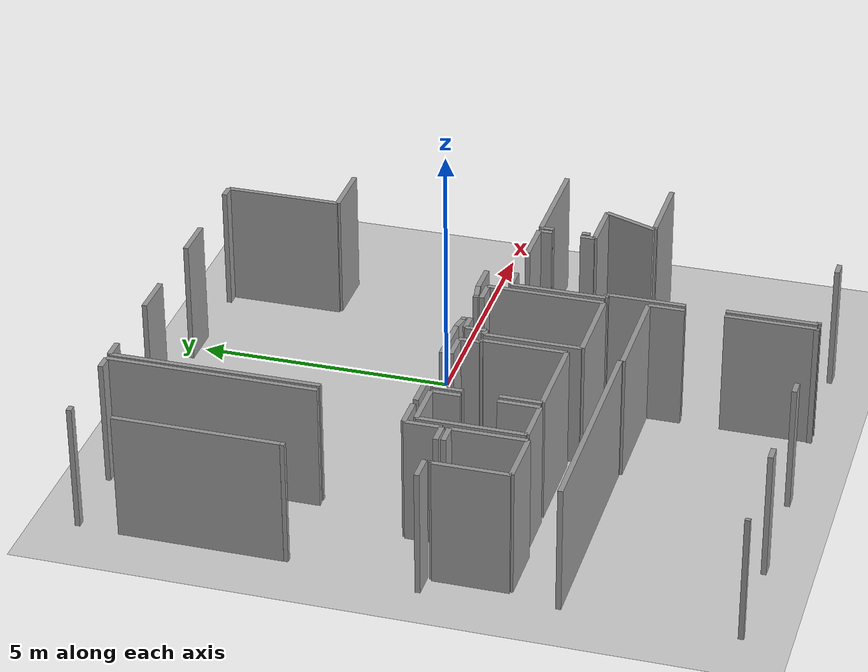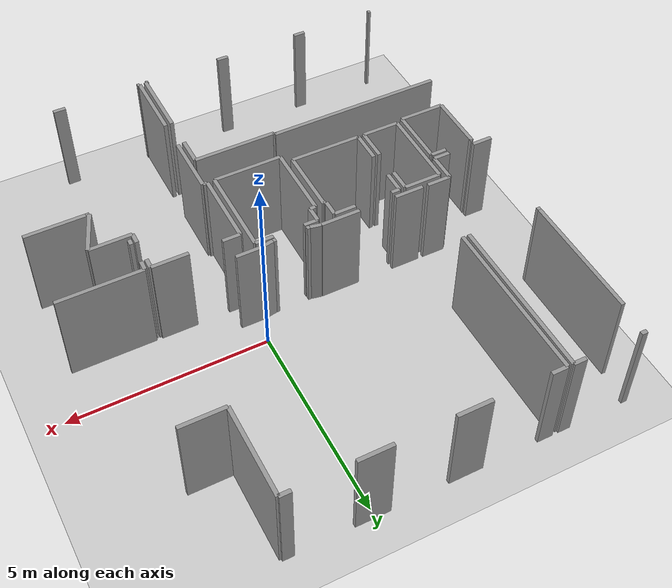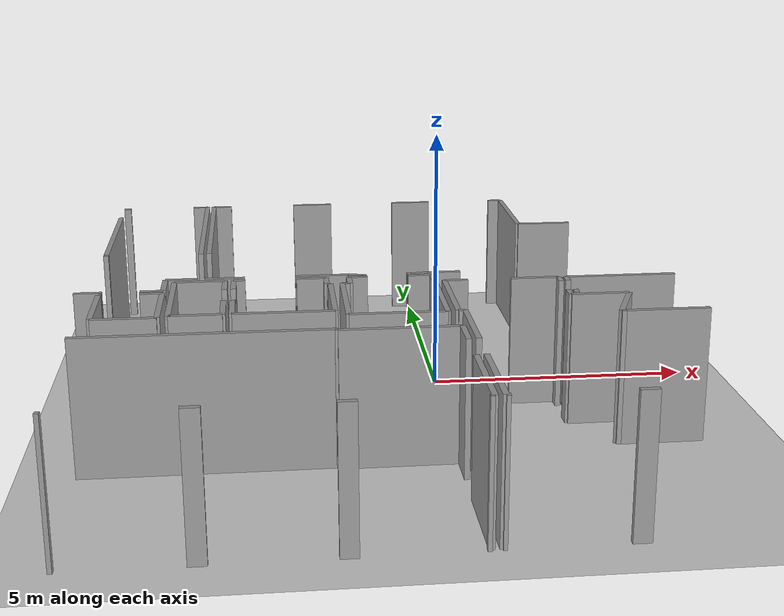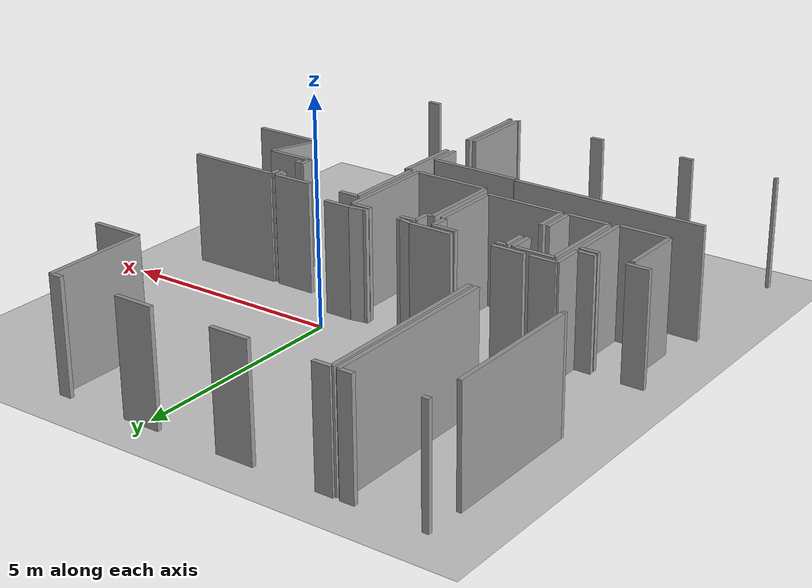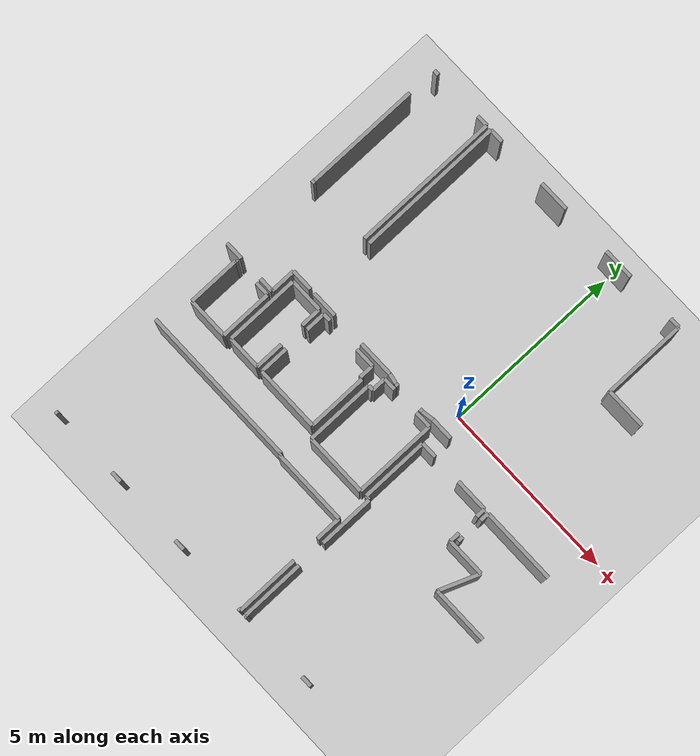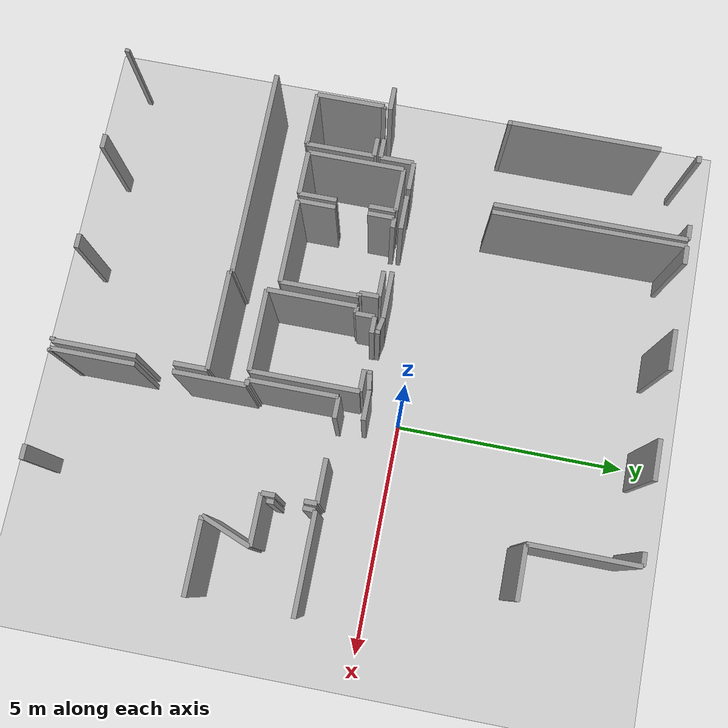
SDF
<sdf version="1.6">
 <world name="default">
  <model name="ground_plane">
   <static>1</static>
   <link name="link">
    <collision name="collision">
     <geometry><plane><normal>0 0 1</normal><size>100 100</size></plane></geometry>
     <surface><friction><ode><mu>100</mu><mu2>50</mu2></ode></friction></surface>
    </collision>
    <visual name="visual">
     <cast_shadows>0</cast_shadows>
     <geometry><plane><normal>0 0 1</normal><size>100 100</size></plane></geometry>
     <material>
      <script><uri>file://media/materials/scripts/gazebo.material</uri><name>Gazebo/Grey</name></script>
     </material>
    </visual>
   </link>
  </model>
  <model name="0510025536_Layout1_PLAN4">
   <static>1</static>
   <link name="Wall_43">
    <collision name="Wall_43_Collision">
     <geometry><box><size>1.43822038098 0.1 2.5</size></box></geometry>
     <pose>0.719110190492 0 1.25 0 0 0</pose>
    </collision>
    <visual name="Wall_43_Visual">
     <pose>0.719110190492 0 1.25 0 0 0</pose>
     <geometry><box><size>1.43822038098 0.1 2.5</size></box></geometry>
     <material>
      <script><uri>file://media/materials/scripts/gazebo.material</uri><name>Gazebo/Grey</name></script>
      <ambient>1 1 1 1</ambient>
     </material>
    </visual>
    <pose>13.8250244628 -8.15341652794 0 0 0 1.57079632679</pose>
   </link>
   <link name="Wall_44">
    <collision name="Wall_44_Collision">
     <geometry><box><size>0.0514671309298 0.1 2.5</size></box></geometry>
     <pose>0.0257335654649 0 1.25 0 0 0</pose>
    </collision>
    <visual name="Wall_44_Visual">
     <pose>0.0257335654649 0 1.25 0 0 0</pose>
     <geometry><box><size>0.0514671309298 0.1 2.5</size></box></geometry>
     <material>
      <script><uri>file://media/materials/scripts/gazebo.material</uri><name>Gazebo/Grey</name></script>
      <ambient>1 1 1 1</ambient>
     </material>
    </visual>
    <pose>13.8250244628 -6.71519614695 0 0 0 0.0</pose>
   </link>
   <link name="Wall_45">
    <collision name="Wall_45_Collision">
     <geometry><box><size>0.402650874941 0.1 2.5</size></box></geometry>
     <pose>0.201325437471 0 1.25 0 0 0</pose>
    </collision>
    <visual name="Wall_45_Visual">
     <pose>0.201325437471 0 1.25 0 0 0</pose>
     <geometry><box><size>0.402650874941 0.1 2.5</size></box></geometry>
     <material>
      <script><uri>file://media/materials/scripts/gazebo.material</uri><name>Gazebo/Grey</name></script>
      <ambient>1 1 1 1</ambient>
     </material>
    </visual>
    <pose>14.557573293 -6.71519614695 0 0 0 0.0</pose>
   </link>
   <link name="Wall_46">
    <collision name="Wall_46_Collision">
     <geometry><box><size>1.44266815773 0.1 2.5</size></box></geometry>
     <pose>0.721334078865 0 1.25 0 0 0</pose>
    </collision>
    <visual name="Wall_46_Visual">
     <pose>0.721334078865 0 1.25 0 0 0</pose>
     <geometry><box><size>1.44266815773 0.1 2.5</size></box></geometry>
     <material>
      <script><uri>file://media/materials/scripts/gazebo.material</uri><name>Gazebo/Grey</name></script>
      <ambient>1 1 1 1</ambient>
     </material>
    </visual>
    <pose>14.9602241679 -6.71519614695 0 0 0 -1.57079632679</pose>
   </link>
   <link name="Wall_47">
    <collision name="Wall_47_Collision">
     <geometry><box><size>1.13520841846 0.1 2.5</size></box></geometry>
     <pose>0.567604209232 0 1.25 0 0 0</pose>
    </collision>
    <visual name="Wall_47_Visual">
     <pose>0.567604209232 0 1.25 0 0 0</pose>
     <geometry><box><size>1.13520841846 0.1 2.5</size></box></geometry>
     <material>
      <script><uri>file://media/materials/scripts/gazebo.material</uri><name>Gazebo/Grey</name></script>
      <ambient>1 1 1 1</ambient>
     </material>
    </visual>
    <pose>14.9602241679 -8.15786430469 0 0 0 3.13767461699</pose>
   </link>
   <link name="Wall_48">
    <collision name="Wall_48_Collision">
     <geometry><box><size>3.17212260614 0.1 2.5</size></box></geometry>
     <pose>1.58606130307 0 1.25 0 0 0</pose>
    </collision>
    <visual name="Wall_48_Visual">
     <pose>1.58606130307 0 1.25 0 0 0</pose>
     <geometry><box><size>3.17212260614 0.1 2.5</size></box></geometry>
     <material>
      <script><uri>file://media/materials/scripts/gazebo.material</uri><name>Gazebo/Grey</name></script>
      <ambient>1 1 1 1</ambient>
     </material>
    </visual>
    <pose>13.6853007332 -3.98781944568 0 0 0 1.57079632679</pose>
   </link>
   <link name="Wall_49">
    <collision name="Wall_49_Collision">
     <geometry><box><size>0.146967251655 0.1 2.5</size></box></geometry>
     <pose>0.0734836258276 0 1.25 0 0 0</pose>
    </collision>
    <visual name="Wall_49_Visual">
     <pose>0.0734836258276 0 1.25 0 0 0</pose>
     <geometry><box><size>0.146967251655 0.1 2.5</size></box></geometry>
     <material>
      <script><uri>file://media/materials/scripts/gazebo.material</uri><name>Gazebo/Grey</name></script>
      <ambient>1 1 1 1</ambient>
     </material>
    </visual>
    <pose>13.6853007332 -0.00146776632652 0 0 0 0.0</pose>
   </link>
   <link name="Wall_50">
    <collision name="Wall_50_Collision">
     <geometry><box><size>0.31604630771 0.1 2.5</size></box></geometry>
     <pose>0.158023153855 0 1.25 0 0 0</pose>
    </collision>
    <visual name="Wall_50_Visual">
     <pose>0.158023153855 0 1.25 0 0 0</pose>
     <geometry><box><size>0.31604630771 0.1 2.5</size></box></geometry>
     <material>
      <script><uri>file://media/materials/scripts/gazebo.material</uri><name>Gazebo/Grey</name></script>
      <ambient>1 1 1 1</ambient>
     </material>
    </visual>
    <pose>15.2350332312 -0.00146776632652 0 0 0 0.0</pose>
   </link>
   <link name="Wall_51">
    <collision name="Wall_51_Collision">
     <geometry><box><size>4.06965218386 0.1 2.5</size></box></geometry>
     <pose>2.03482609193 0 1.25 0 0 0</pose>
    </collision>
    <visual name="Wall_51_Visual">
     <pose>2.03482609193 0 1.25 0 0 0</pose>
     <geometry><box><size>4.06965218386 0.1 2.5</size></box></geometry>
     <material>
      <script><uri>file://media/materials/scripts/gazebo.material</uri><name>Gazebo/Grey</name></script>
      <ambient>1 1 1 1</ambient>
     </material>
    </visual>
    <pose>15.551079539 -0.00146776632652 0 0 0 -1.57079632679</pose>
   </link>
   <link name="Wall_52">
    <collision name="Wall_52_Collision">
     <geometry><box><size>0.0833067079944 0.1 2.5</size></box></geometry>
     <pose>0.0416533539972 0 1.25 0 0 0</pose>
    </collision>
    <visual name="Wall_52_Visual">
     <pose>0.0416533539972 0 1.25 0 0 0</pose>
     <geometry><box><size>0.0833067079944 0.1 2.5</size></box></geometry>
     <material>
      <script><uri>file://media/materials/scripts/gazebo.material</uri><name>Gazebo/Grey</name></script>
      <ambient>1 1 1 1</ambient>
     </material>
    </visual>
    <pose>13.6863173679 -4.07111995018 0 0 0 1.58300014501</pose>
   </link>
   <link name="Wall_66">
    <collision name="Wall_66_Collision">
     <geometry><box><size>0.597844734468 0.1 2.5</size></box></geometry>
     <pose>0.298922367234 0 1.25 0 0 0</pose>
    </collision>
    <visual name="Wall_66_Visual">
     <pose>0.298922367234 0 1.25 0 0 0</pose>
     <geometry><box><size>0.597844734468 0.1 2.5</size></box></geometry>
     <material>
      <script><uri>file://media/materials/scripts/gazebo.material</uri><name>Gazebo/Grey</name></script>
      <ambient>1 1 1 1</ambient>
     </material>
    </visual>
    <pose>15.5637239329 -5.86713220063 0 0 0 3.14159265359</pose>
   </link>
   <link name="Wall_67">
    <collision name="Wall_67_Collision">
     <geometry><box><size>0.708340216797 0.1 2.5</size></box></geometry>
     <pose>0.354170108399 0 1.25 0 0 0</pose>
    </collision>
    <visual name="Wall_67_Visual">
     <pose>0.354170108399 0 1.25 0 0 0</pose>
     <geometry><box><size>0.708340216797 0.1 2.5</size></box></geometry>
     <material>
      <script><uri>file://media/materials/scripts/gazebo.material</uri><name>Gazebo/Grey</name></script>
      <ambient>1 1 1 1</ambient>
     </material>
    </visual>
    <pose>14.9658791984 -5.86713220063 0 0 0 -1.57079632679</pose>
   </link>
   <link name="Wall_68">
    <collision name="Wall_68_Collision">
     <geometry><box><size>0.415740046511 0.1 2.5</size></box></geometry>
     <pose>0.207870023256 0 1.25 0 0 0</pose>
    </collision>
    <visual name="Wall_68_Visual">
     <pose>0.207870023256 0 1.25 0 0 0</pose>
     <geometry><box><size>0.415740046511 0.1 2.5</size></box></geometry>
     <material>
      <script><uri>file://media/materials/scripts/gazebo.material</uri><name>Gazebo/Grey</name></script>
      <ambient>1 1 1 1</ambient>
     </material>
    </visual>
    <pose>14.9658791984 -6.57547241743 0 0 0 3.14159265359</pose>
   </link>
   <link name="Wall_69">
    <collision name="Wall_69_Collision">
     <geometry><box><size>0.504377883112 0.1 2.5</size></box></geometry>
     <pose>0.252188941556 0 1.25 0 0 0</pose>
    </collision>
    <visual name="Wall_69_Visual">
     <pose>0.252188941556 0 1.25 0 0 0</pose>
     <geometry><box><size>0.504377883112 0.1 2.5</size></box></geometry>
     <material>
      <script><uri>file://media/materials/scripts/gazebo.material</uri><name>Gazebo/Grey</name></script>
      <ambient>1 1 1 1</ambient>
     </material>
    </visual>
    <pose>13.8700740873 -6.57547241743 0 0 0 3.14159265359</pose>
   </link>
   <link name="Wall_85">
    <collision name="Wall_85_Collision">
     <geometry><box><size>2.04013165419 0.1 2.5</size></box></geometry>
     <pose>1.0200658271 0 1.25 0 0 0</pose>
    </collision>
    <visual name="Wall_85_Visual">
     <pose>1.0200658271 0 1.25 0 0 0</pose>
     <geometry><box><size>2.04013165419 0.1 2.5</size></box></geometry>
     <material>
      <script><uri>file://media/materials/scripts/gazebo.material</uri><name>Gazebo/Grey</name></script>
      <ambient>1 1 1 1</ambient>
     </material>
    </visual>
    <pose>15.1395331105 -8.0865727974 0 0 0 1.57079632679</pose>
   </link>
   <link name="Wall_86">
    <collision name="Wall_86_Collision">
     <geometry><box><size>0.932825863186 0.1 2.5</size></box></geometry>
     <pose>0.466412931593 0 1.25 0 0 0</pose>
    </collision>
    <visual name="Wall_86_Visual">
     <pose>0.466412931593 0 1.25 0 0 0</pose>
     <geometry><box><size>0.932825863186 0.1 2.5</size></box></geometry>
     <material>
      <script><uri>file://media/materials/scripts/gazebo.material</uri><name>Gazebo/Grey</name></script>
      <ambient>1 1 1 1</ambient>
     </material>
    </visual>
    <pose>15.1395331105 -6.04644114321 0 0 0 0.0</pose>
   </link>
   <link name="Wall_87">
    <collision name="Wall_87_Collision">
     <geometry><box><size>0.562262520492 0.1 2.5</size></box></geometry>
     <pose>0.281131260246 0 1.25 0 0 0</pose>
    </collision>
    <visual name="Wall_87_Visual">
     <pose>0.281131260246 0 1.25 0 0 0</pose>
     <geometry><box><size>0.562262520492 0.1 2.5</size></box></geometry>
     <material>
      <script><uri>file://media/materials/scripts/gazebo.material</uri><name>Gazebo/Grey</name></script>
      <ambient>1 1 1 1</ambient>
     </material>
    </visual>
    <pose>16.0723589737 -6.04644114321 0 0 0 -1.57079632679</pose>
   </link>
   <link name="Wall_88">
    <collision name="Wall_88_Collision">
     <geometry><box><size>0.795707260042 0.1 2.5</size></box></geometry>
     <pose>0.397853630021 0 1.25 0 0 0</pose>
    </collision>
    <visual name="Wall_88_Visual">
     <pose>0.397853630021 0 1.25 0 0 0</pose>
     <geometry><box><size>0.795707260042 0.1 2.5</size></box></geometry>
     <material>
      <script><uri>file://media/materials/scripts/gazebo.material</uri><name>Gazebo/Grey</name></script>
      <ambient>1 1 1 1</ambient>
     </material>
    </visual>
    <pose>16.0723589737 -7.29328004473 0 0 0 -1.57079632679</pose>
   </link>
   <link name="Wall_89">
    <collision name="Wall_89_Collision">
     <geometry><box><size>0.932828988012 0.1 2.5</size></box></geometry>
     <pose>0.466414494006 0 1.25 0 0 0</pose>
    </collision>
    <visual name="Wall_89_Visual">
     <pose>0.466414494006 0 1.25 0 0 0</pose>
     <geometry><box><size>0.932828988012 0.1 2.5</size></box></geometry>
     <material>
      <script><uri>file://media/materials/scripts/gazebo.material</uri><name>Gazebo/Grey</name></script>
      <ambient>1 1 1 1</ambient>
     </material>
    </visual>
    <pose>16.0723589737 -8.08898730477 0 0 0 3.13900427983</pose>
   </link>
   <link name="Wall_90">
    <collision name="Wall_90_Collision">
     <geometry><box><size>0.795961418714 0.1 2.5</size></box></geometry>
     <pose>0.397980709357 0 1.25 0 0 0</pose>
    </collision>
    <visual name="Wall_90_Visual">
     <pose>0.397980709357 0 1.25 0 0 0</pose>
     <geometry><box><size>0.795961418714 0.1 2.5</size></box></geometry>
     <material>
      <script><uri>file://media/materials/scripts/gazebo.material</uri><name>Gazebo/Grey</name></script>
      <ambient>1 1 1 1</ambient>
     </material>
    </visual>
    <pose>16.2306998259 -8.08326873467 0 0 0 1.57079632679</pose>
   </link>
   <link name="Wall_91">
    <collision name="Wall_91_Collision">
     <geometry><box><size>0.557687664409 0.1 2.5</size></box></geometry>
     <pose>0.278843832204 0 1.25 0 0 0</pose>
    </collision>
    <visual name="Wall_91_Visual">
     <pose>0.278843832204 0 1.25 0 0 0</pose>
     <geometry><box><size>0.557687664409 0.1 2.5</size></box></geometry>
     <material>
      <script><uri>file://media/materials/scripts/gazebo.material</uri><name>Gazebo/Grey</name></script>
      <ambient>1 1 1 1</ambient>
     </material>
    </visual>
    <pose>16.2306998259 -6.60203199858 0 0 0 1.57079632679</pose>
   </link>
   <link name="Wall_92">
    <collision name="Wall_92_Collision">
     <geometry><box><size>0.215780711898 0.1 2.5</size></box></geometry>
     <pose>0.107890355949 0 1.25 0 0 0</pose>
    </collision>
    <visual name="Wall_92_Visual">
     <pose>0.107890355949 0 1.25 0 0 0</pose>
     <geometry><box><size>0.215780711898 0.1 2.5</size></box></geometry>
     <material>
      <script><uri>file://media/materials/scripts/gazebo.material</uri><name>Gazebo/Grey</name></script>
      <ambient>1 1 1 1</ambient>
     </material>
    </visual>
    <pose>16.2306998259 -6.04434433417 0 0 0 0.0</pose>
   </link>
   <link name="Wall_93">
    <collision name="Wall_93_Collision">
     <geometry><box><size>0.550444142278 0.1 2.5</size></box></geometry>
     <pose>0.275222071139 0 1.25 0 0 0</pose>
    </collision>
    <visual name="Wall_93_Visual">
     <pose>0.275222071139 0 1.25 0 0 0</pose>
     <geometry><box><size>0.550444142278 0.1 2.5</size></box></geometry>
     <material>
      <script><uri>file://media/materials/scripts/gazebo.material</uri><name>Gazebo/Grey</name></script>
      <ambient>1 1 1 1</ambient>
     </material>
    </visual>
    <pose>17.400719269 -6.04434433417 0 0 0 0.0</pose>
   </link>
   <link name="Wall_94">
    <collision name="Wall_94_Collision">
     <geometry><box><size>0.403921668298 0.1 2.5</size></box></geometry>
     <pose>0.201960834149 0 1.25 0 0 0</pose>
    </collision>
    <visual name="Wall_94_Visual">
     <pose>0.201960834149 0 1.25 0 0 0</pose>
     <geometry><box><size>0.403921668298 0.1 2.5</size></box></geometry>
     <material>
      <script><uri>file://media/materials/scripts/gazebo.material</uri><name>Gazebo/Grey</name></script>
      <ambient>1 1 1 1</ambient>
     </material>
    </visual>
    <pose>17.9511634113 -6.04434433417 0 0 0 -1.57079632679</pose>
   </link>
   <link name="Wall_95">
    <collision name="Wall_95_Collision">
     <geometry><box><size>0.0653187785134 0.1 2.5</size></box></geometry>
     <pose>0.0326593892567 0 1.25 0 0 0</pose>
    </collision>
    <visual name="Wall_95_Visual">
     <pose>0.0326593892567 0 1.25 0 0 0</pose>
     <geometry><box><size>0.0653187785134 0.1 2.5</size></box></geometry>
     <material>
      <script><uri>file://media/materials/scripts/gazebo.material</uri><name>Gazebo/Grey</name></script>
      <ambient>1 1 1 1</ambient>
     </material>
    </visual>
    <pose>17.9511634113 -6.44826600247 0 0 0 0.0</pose>
   </link>
   <link name="Wall_96">
    <collision name="Wall_96_Collision">
     <geometry><box><size>1.63951404862 0.1 2.5</size></box></geometry>
     <pose>0.81975702431 0 1.25 0 0 0</pose>
    </collision>
    <visual name="Wall_96_Visual">
     <pose>0.81975702431 0 1.25 0 0 0</pose>
     <geometry><box><size>1.63951404862 0.1 2.5</size></box></geometry>
     <material>
      <script><uri>file://media/materials/scripts/gazebo.material</uri><name>Gazebo/Grey</name></script>
      <ambient>1 1 1 1</ambient>
     </material>
    </visual>
    <pose>18.0164821898 -6.44826600247 0 0 0 -1.57079632679</pose>
   </link>
   <link name="Wall_97">
    <collision name="Wall_97_Collision">
     <geometry><box><size>1.78578806226 0.1 2.5</size></box></geometry>
     <pose>0.892894031128 0 1.25 0 0 0</pose>
    </collision>
    <visual name="Wall_97_Visual">
     <pose>0.892894031128 0 1.25 0 0 0</pose>
     <geometry><box><size>1.78578806226 0.1 2.5</size></box></geometry>
     <material>
      <script><uri>file://media/materials/scripts/gazebo.material</uri><name>Gazebo/Grey</name></script>
      <ambient>1 1 1 1</ambient>
     </material>
    </visual>
    <pose>18.0164821898 -8.08778005109 0 0 0 3.13906641808</pose>
   </link>
   <link name="Wall_98">
    <collision name="Wall_98_Collision">
     <geometry><box><size>1.87778780293 0.1 2.5</size></box></geometry>
     <pose>0.938893901463 0 1.25 0 0 0</pose>
    </collision>
    <visual name="Wall_98_Visual">
     <pose>0.938893901463 0 1.25 0 0 0</pose>
     <geometry><box><size>1.87778780293 0.1 2.5</size></box></geometry>
     <material>
      <script><uri>file://media/materials/scripts/gazebo.material</uri><name>Gazebo/Grey</name></script>
      <ambient>1 1 1 1</ambient>
     </material>
    </visual>
    <pose>18.2362023611 -8.31976337828 0 0 0 1.57079632679</pose>
   </link>
   <link name="Wall_99">
    <collision name="Wall_99_Collision">
     <geometry><box><size>0.146204775641 0.1 2.5</size></box></geometry>
     <pose>0.0731023878207 0 1.25 0 0 0</pose>
    </collision>
    <visual name="Wall_99_Visual">
     <pose>0.0731023878207 0 1.25 0 0 0</pose>
     <geometry><box><size>0.146204775641 0.1 2.5</size></box></geometry>
     <material>
      <script><uri>file://media/materials/scripts/gazebo.material</uri><name>Gazebo/Grey</name></script>
      <ambient>1 1 1 1</ambient>
     </material>
    </visual>
    <pose>18.2362023611 -6.44197557535 0 0 0 0.0</pose>
   </link>
   <link name="Wall_100">
    <collision name="Wall_100_Collision">
     <geometry><box><size>0.395788590817 0.1 2.5</size></box></geometry>
     <pose>0.197894295409 0 1.25 0 0 0</pose>
    </collision>
    <visual name="Wall_100_Visual">
     <pose>0.197894295409 0 1.25 0 0 0</pose>
     <geometry><box><size>0.395788590817 0.1 2.5</size></box></geometry>
     <material>
      <script><uri>file://media/materials/scripts/gazebo.material</uri><name>Gazebo/Grey</name></script>
      <ambient>1 1 1 1</ambient>
     </material>
    </visual>
    <pose>18.3824071368 -6.44197557535 0 0 0 1.57079632679</pose>
   </link>
   <link name="Wall_101">
    <collision name="Wall_101_Collision">
     <geometry><box><size>0.35181914069 0.1 2.5</size></box></geometry>
     <pose>0.175909570345 0 1.25 0 0 0</pose>
    </collision>
    <visual name="Wall_101_Visual">
     <pose>0.175909570345 0 1.25 0 0 0</pose>
     <geometry><box><size>0.35181914069 0.1 2.5</size></box></geometry>
     <material>
      <script><uri>file://media/materials/scripts/gazebo.material</uri><name>Gazebo/Grey</name></script>
      <ambient>1 1 1 1</ambient>
     </material>
    </visual>
    <pose>18.3824071368 -6.04618698453 0 0 0 0.0</pose>
   </link>
   <link name="Wall_102">
    <collision name="Wall_102_Collision">
     <geometry><box><size>0.457231449594 0.1 2.5</size></box></geometry>
     <pose>0.228615724797 0 1.25 0 0 0</pose>
    </collision>
    <visual name="Wall_102_Visual">
     <pose>0.228615724797 0 1.25 0 0 0</pose>
     <geometry><box><size>0.457231449594 0.1 2.5</size></box></geometry>
     <material>
      <script><uri>file://media/materials/scripts/gazebo.material</uri><name>Gazebo/Grey</name></script>
      <ambient>1 1 1 1</ambient>
     </material>
    </visual>
    <pose>19.5015948457 -6.04618698453 0 0 0 0.0</pose>
   </link>
   <link name="Wall_103">
    <collision name="Wall_103_Collision">
     <geometry><box><size>2.27078064836 0.1 2.5</size></box></geometry>
     <pose>1.13539032418 0 1.25 0 0 0</pose>
    </collision>
    <visual name="Wall_103_Visual">
     <pose>1.13539032418 0 1.25 0 0 0</pose>
     <geometry><box><size>2.27078064836 0.1 2.5</size></box></geometry>
     <material>
      <script><uri>file://media/materials/scripts/gazebo.material</uri><name>Gazebo/Grey</name></script>
      <ambient>1 1 1 1</ambient>
     </material>
    </visual>
    <pose>19.9588262953 -6.04618698453 0 0 0 -1.57079632679</pose>
   </link>
   <link name="Wall_104">
    <collision name="Wall_104_Collision">
     <geometry><box><size>1.72262620281 0.1 2.5</size></box></geometry>
     <pose>0.861313101404 0 1.25 0 0 0</pose>
    </collision>
    <visual name="Wall_104_Visual">
     <pose>0.861313101404 0 1.25 0 0 0</pose>
     <geometry><box><size>1.72262620281 0.1 2.5</size></box></geometry>
     <material>
      <script><uri>file://media/materials/scripts/gazebo.material</uri><name>Gazebo/Grey</name></script>
      <ambient>1 1 1 1</ambient>
     </material>
    </visual>
    <pose>19.9588262953 -8.31696763289 0 0 0 -3.13996969754</pose>
   </link>
   <link name="Wall_106">
    <collision name="Wall_106_Collision">
     <geometry><box><size>4.44479038264 0.1 2.5</size></box></geometry>
     <pose>2.22239519132 0 1.25 0 0 0</pose>
    </collision>
    <visual name="Wall_106_Visual">
     <pose>2.22239519132 0 1.25 0 0 0</pose>
     <geometry><box><size>4.44479038264 0.1 2.5</size></box></geometry>
     <material>
      <script><uri>file://media/materials/scripts/gazebo.material</uri><name>Gazebo/Grey</name></script>
      <ambient>1 1 1 1</ambient>
     </material>
    </visual>
    <pose>13.5544090175 -9.09704413465 0 0 0 0.0</pose>
   </link>
   <link name="Wall_107">
    <collision name="Wall_107_Collision">
     <geometry><box><size>0.051085892923 0.1 2.5</size></box></geometry>
     <pose>0.0255429464615 0 1.25 0 0 0</pose>
    </collision>
    <visual name="Wall_107_Visual">
     <pose>0.0255429464615 0 1.25 0 0 0</pose>
     <geometry><box><size>0.051085892923 0.1 2.5</size></box></geometry>
     <material>
      <script><uri>file://media/materials/scripts/gazebo.material</uri><name>Gazebo/Grey</name></script>
      <ambient>1 1 1 1</ambient>
     </material>
    </visual>
    <pose>17.9991994002 -9.09704413465 0 0 0 -1.57079632679</pose>
   </link>
   <link name="Wall_108">
    <collision name="Wall_108_Collision">
     <geometry><box><size>2.09522054619 0.1 2.5</size></box></geometry>
     <pose>1.04761027309 0 1.25 0 0 0</pose>
    </collision>
    <visual name="Wall_108_Visual">
     <pose>1.04761027309 0 1.25 0 0 0</pose>
     <geometry><box><size>2.09522054619 0.1 2.5</size></box></geometry>
     <material>
      <script><uri>file://media/materials/scripts/gazebo.material</uri><name>Gazebo/Grey</name></script>
      <ambient>1 1 1 1</ambient>
     </material>
    </visual>
    <pose>17.9991994002 -9.14813002758 0 0 0 0.0</pose>
   </link>
   <link name="Wall_109">
    <collision name="Wall_109_Collision">
     <geometry><box><size>0.703384122708 0.1 2.5</size></box></geometry>
     <pose>0.351692061354 0 1.25 0 0 0</pose>
    </collision>
    <visual name="Wall_109_Visual">
     <pose>0.351692061354 0 1.25 0 0 0</pose>
     <geometry><box><size>0.703384122708 0.1 2.5</size></box></geometry>
     <material>
      <script><uri>file://media/materials/scripts/gazebo.material</uri><name>Gazebo/Grey</name></script>
      <ambient>1 1 1 1</ambient>
     </material>
    </visual>
    <pose>20.0944199464 -9.14813002758 0 0 0 -1.57079632679</pose>
   </link>
   <link name="Wall_110">
    <collision name="Wall_110_Collision">
     <geometry><box><size>1.74975537228 0.1 2.5</size></box></geometry>
     <pose>0.874877686139 0 1.25 0 0 0</pose>
    </collision>
    <visual name="Wall_110_Visual">
     <pose>0.874877686139 0 1.25 0 0 0</pose>
     <geometry><box><size>1.74975537228 0.1 2.5</size></box></geometry>
     <material>
      <script><uri>file://media/materials/scripts/gazebo.material</uri><name>Gazebo/Grey</name></script>
      <ambient>1 1 1 1</ambient>
     </material>
    </visual>
    <pose>20.0944199464 -10.6197087342 0 0 0 -1.57079632679</pose>
   </link>
   <link name="Wall_111">
    <collision name="Wall_111_Collision">
     <geometry><box><size>0.0691311585823 0.1 2.5</size></box></geometry>
     <pose>0.0345655792912 0 1.25 0 0 0</pose>
    </collision>
    <visual name="Wall_111_Visual">
     <pose>0.0345655792912 0 1.25 0 0 0</pose>
     <geometry><box><size>0.0691311585823 0.1 2.5</size></box></geometry>
     <material>
      <script><uri>file://media/materials/scripts/gazebo.material</uri><name>Gazebo/Grey</name></script>
      <ambient>1 1 1 1</ambient>
     </material>
    </visual>
    <pose>20.0944199464 -12.3694641064 0 0 0 3.14159265359</pose>
   </link>
   <link name="Wall_112">
    <collision name="Wall_112_Collision">
     <geometry><box><size>0.299081216403 0.1 2.5</size></box></geometry>
     <pose>0.149540608202 0 1.25 0 0 0</pose>
    </collision>
    <visual name="Wall_112_Visual">
     <pose>0.149540608202 0 1.25 0 0 0</pose>
     <geometry><box><size>0.299081216403 0.1 2.5</size></box></geometry>
     <material>
      <script><uri>file://media/materials/scripts/gazebo.material</uri><name>Gazebo/Grey</name></script>
      <ambient>1 1 1 1</ambient>
     </material>
    </visual>
    <pose>18.1007357894 -12.3694641064 0 0 0 3.14159265359</pose>
   </link>
   <link name="Wall_113">
    <collision name="Wall_113_Collision">
     <geometry><box><size>0.303274834479 0.1 2.5</size></box></geometry>
     <pose>0.15163741724 0 1.25 0 0 0</pose>
    </collision>
    <visual name="Wall_113_Visual">
     <pose>0.15163741724 0 1.25 0 0 0</pose>
     <geometry><box><size>0.303274834479 0.1 2.5</size></box></geometry>
     <material>
      <script><uri>file://media/materials/scripts/gazebo.material</uri><name>Gazebo/Grey</name></script>
      <ambient>1 1 1 1</ambient>
     </material>
    </visual>
    <pose>15.8636947046 -12.3694641064 0 0 0 3.14159265359</pose>
   </link>
   <link name="Wall_114">
    <collision name="Wall_114_Collision">
     <geometry><box><size>0.0741005751865 0.1 2.5</size></box></geometry>
     <pose>0.0370502875933 0 1.25 0 0 0</pose>
    </collision>
    <visual name="Wall_114_Visual">
     <pose>0.0370502875933 0 1.25 0 0 0</pose>
     <geometry><box><size>0.0741005751865 0.1 2.5</size></box></geometry>
     <material>
      <script><uri>file://media/materials/scripts/gazebo.material</uri><name>Gazebo/Grey</name></script>
      <ambient>1 1 1 1</ambient>
     </material>
    </visual>
    <pose>13.6282421116 -12.3694641064 0 0 0 3.05659996758</pose>
   </link>
   <link name="Wall_115">
    <collision name="Wall_115_Collision">
     <geometry><box><size>1.7566176564 0.1 2.5</size></box></geometry>
     <pose>0.878308828201 0 1.25 0 0 0</pose>
    </collision>
    <visual name="Wall_115_Visual">
     <pose>0.878308828201 0 1.25 0 0 0</pose>
     <geometry><box><size>1.7566176564 0.1 2.5</size></box></geometry>
     <material>
      <script><uri>file://media/materials/scripts/gazebo.material</uri><name>Gazebo/Grey</name></script>
      <ambient>1 1 1 1</ambient>
     </material>
    </visual>
    <pose>20.2633083834 -12.3624112033 0 0 0 1.57079632679</pose>
   </link>
   <link name="Wall_116">
    <collision name="Wall_116_Collision">
     <geometry><box><size>1.52577804323 0.1 2.5</size></box></geometry>
     <pose>0.762889021616 0 1.25 0 0 0</pose>
    </collision>
    <visual name="Wall_116_Visual">
     <pose>0.762889021616 0 1.25 0 0 0</pose>
     <geometry><box><size>1.52577804323 0.1 2.5</size></box></geometry>
     <material>
      <script><uri>file://media/materials/scripts/gazebo.material</uri><name>Gazebo/Grey</name></script>
      <ambient>1 1 1 1</ambient>
     </material>
    </visual>
    <pose>20.2633083834 -9.83181685326 0 0 0 1.57079632679</pose>
   </link>
   <link name="Wall_117">
    <collision name="Wall_117_Collision">
     <geometry><box><size>0.119962892834 0.1 2.5</size></box></geometry>
     <pose>0.059981446417 0 1.25 0 0 0</pose>
    </collision>
    <visual name="Wall_117_Visual">
     <pose>0.059981446417 0 1.25 0 0 0</pose>
     <geometry><box><size>0.119962892834 0.1 2.5</size></box></geometry>
     <material>
      <script><uri>file://media/materials/scripts/gazebo.material</uri><name>Gazebo/Grey</name></script>
      <ambient>1 1 1 1</ambient>
     </material>
    </visual>
    <pose>20.2633083834 -8.30603881003 0 0 0 3.14159265359</pose>
   </link>
   <link name="Wall_118">
    <collision name="Wall_118_Collision">
     <geometry><box><size>1.85923421992 0.1 2.5</size></box></geometry>
     <pose>0.929617109962 0 1.25 0 0 0</pose>
    </collision>
    <visual name="Wall_118_Visual">
     <pose>0.929617109962 0 1.25 0 0 0</pose>
     <geometry><box><size>1.85923421992 0.1 2.5</size></box></geometry>
     <material>
      <script><uri>file://media/materials/scripts/gazebo.material</uri><name>Gazebo/Grey</name></script>
      <ambient>1 1 1 1</ambient>
     </material>
    </visual>
    <pose>20.1433454906 -8.30603881003 0 0 0 1.57079632679</pose>
   </link>
   <link name="Wall_119">
    <collision name="Wall_119_Collision">
     <geometry><box><size>0.443697500349 0.1 2.5</size></box></geometry>
     <pose>0.221848750175 0 1.25 0 0 0</pose>
    </collision>
    <visual name="Wall_119_Visual">
     <pose>0.221848750175 0 1.25 0 0 0</pose>
     <geometry><box><size>0.443697500349 0.1 2.5</size></box></geometry>
     <material>
      <script><uri>file://media/materials/scripts/gazebo.material</uri><name>Gazebo/Grey</name></script>
      <ambient>1 1 1 1</ambient>
     </material>
    </visual>
    <pose>20.1433454906 -6.44680459011 0 0 0 0.0</pose>
   </link>
   <link name="Wall_120">
    <collision name="Wall_120_Collision">
     <geometry><box><size>0.909951582773 0.1 2.5</size></box></geometry>
     <pose>0.454975791387 0 1.25 0 0 0</pose>
    </collision>
    <visual name="Wall_120_Visual">
     <pose>0.454975791387 0 1.25 0 0 0</pose>
     <geometry><box><size>0.909951582773 0.1 2.5</size></box></geometry>
     <material>
      <script><uri>file://media/materials/scripts/gazebo.material</uri><name>Gazebo/Grey</name></script>
      <ambient>1 1 1 1</ambient>
     </material>
    </visual>
    <pose>21.4027017067 -6.44680459011 0 0 0 0.0</pose>
   </link>
   <link name="Wall_121">
    <collision name="Wall_121_Collision">
     <geometry><box><size>0.262609447078 0.1 2.5</size></box></geometry>
     <pose>0.131304723539 0 1.25 0 0 0</pose>
    </collision>
    <visual name="Wall_121_Visual">
     <pose>0.131304723539 0 1.25 0 0 0</pose>
     <geometry><box><size>0.262609447078 0.1 2.5</size></box></geometry>
     <material>
      <script><uri>file://media/materials/scripts/gazebo.material</uri><name>Gazebo/Grey</name></script>
      <ambient>1 1 1 1</ambient>
     </material>
    </visual>
    <pose>22.3126532894 -6.44680459011 0 0 0 -1.57079632679</pose>
   </link>
   <link name="Wall_122">
    <collision name="Wall_122_Collision">
     <geometry><box><size>0.280337014398 0.1 2.5</size></box></geometry>
     <pose>0.140168507199 0 1.25 0 0 0</pose>
    </collision>
    <visual name="Wall_122_Visual">
     <pose>0.140168507199 0 1.25 0 0 0</pose>
     <geometry><box><size>0.280337014398 0.1 2.5</size></box></geometry>
     <material>
      <script><uri>file://media/materials/scripts/gazebo.material</uri><name>Gazebo/Grey</name></script>
      <ambient>1 1 1 1</ambient>
     </material>
    </visual>
    <pose>22.3126532894 -7.28616360194 0 0 0 -1.57079632679</pose>
   </link>
   <link name="Wall_123">
    <collision name="Wall_123_Collision">
     <geometry><box><size>1.06428943589 0.1 2.5</size></box></geometry>
     <pose>0.532144717947 0 1.25 0 0 0</pose>
    </collision>
    <visual name="Wall_123_Visual">
     <pose>0.532144717947 0 1.25 0 0 0</pose>
     <geometry><box><size>1.06428943589 0.1 2.5</size></box></geometry>
     <material>
      <script><uri>file://media/materials/scripts/gazebo.material</uri><name>Gazebo/Grey</name></script>
      <ambient>1 1 1 1</ambient>
     </material>
    </visual>
    <pose>22.3126532894 -7.56650061633 0 0 0 0.0</pose>
   </link>
   <link name="Wall_124">
    <collision name="Wall_124_Collision">
     <geometry><box><size>1.12424600339 0.1 2.5</size></box></geometry>
     <pose>0.562123001694 0 1.25 0 0 0</pose>
    </collision>
    <visual name="Wall_124_Visual">
     <pose>0.562123001694 0 1.25 0 0 0</pose>
     <geometry><box><size>1.12424600339 0.1 2.5</size></box></geometry>
     <material>
      <script><uri>file://media/materials/scripts/gazebo.material</uri><name>Gazebo/Grey</name></script>
      <ambient>1 1 1 1</ambient>
     </material>
    </visual>
    <pose>23.3769427253 -7.56650061633 0 0 0 -1.94672684533</pose>
   </link>
   <link name="Wall_125">
    <collision name="Wall_125_Collision">
     <geometry><box><size>0.083300504505 0.1 2.5</size></box></geometry>
     <pose>0.0416502522525 0 1.25 0 0 0</pose>
    </collision>
    <visual name="Wall_125_Visual">
     <pose>0.0416502522525 0 1.25 0 0 0</pose>
     <geometry><box><size>0.083300504505 0.1 2.5</size></box></geometry>
     <material>
      <script><uri>file://media/materials/scripts/gazebo.material</uri><name>Gazebo/Grey</name></script>
      <ambient>1 1 1 1</ambient>
     </material>
    </visual>
    <pose>22.9641890432 -8.61223646923 0 0 0 0.0</pose>
   </link>
   <link name="Wall_126">
    <collision name="Wall_126_Collision">
     <geometry><box><size>1.50538180986 0.1 2.5</size></box></geometry>
     <pose>0.752690904932 0 1.25 0 0 0</pose>
    </collision>
    <visual name="Wall_126_Visual">
     <pose>0.752690904932 0 1.25 0 0 0</pose>
     <geometry><box><size>1.50538180986 0.1 2.5</size></box></geometry>
     <material>
      <script><uri>file://media/materials/scripts/gazebo.material</uri><name>Gazebo/Grey</name></script>
      <ambient>1 1 1 1</ambient>
     </material>
    </visual>
    <pose>23.0474895477 -8.61223646923 0 0 0 0.0</pose>
   </link>
   <link name="Wall_129">
    <collision name="Wall_129_Collision">
     <geometry><box><size>0.310963134285 0.1 2.5</size></box></geometry>
     <pose>0.155481567142 0 1.25 0 0 0</pose>
    </collision>
    <visual name="Wall_129_Visual">
     <pose>0.155481567142 0 1.25 0 0 0</pose>
     <geometry><box><size>0.310963134285 0.1 2.5</size></box></geometry>
     <material>
      <script><uri>file://media/materials/scripts/gazebo.material</uri><name>Gazebo/Grey</name></script>
      <ambient>1 1 1 1</ambient>
     </material>
    </visual>
    <pose>22.5617923269 -12.363237219 0 0 0 3.14159265359</pose>
   </link>
   <link name="Wall_130">
    <collision name="Wall_130_Collision">
     <geometry><box><size>0.0663405558171 0.1 2.5</size></box></geometry>
     <pose>0.0331702779085 0 1.25 0 0 0</pose>
    </collision>
    <visual name="Wall_130_Visual">
     <pose>0.0331702779085 0 1.25 0 0 0</pose>
     <geometry><box><size>0.0663405558171 0.1 2.5</size></box></geometry>
     <material>
      <script><uri>file://media/materials/scripts/gazebo.material</uri><name>Gazebo/Grey</name></script>
      <ambient>1 1 1 1</ambient>
     </material>
    </visual>
    <pose>20.3296437966 -12.363237219 0 0 0 3.12914118984</pose>
   </link>
   <link name="Wall_131">
    <collision name="Wall_131_Collision">
     <geometry><box><size>2.09827045024 0.1 2.5</size></box></geometry>
     <pose>1.04913522512 0 1.25 0 0 0</pose>
    </collision>
    <visual name="Wall_131_Visual">
     <pose>1.04913522512 0 1.25 0 0 0</pose>
     <geometry><box><size>2.09827045024 0.1 2.5</size></box></geometry>
     <material>
      <script><uri>file://media/materials/scripts/gazebo.material</uri><name>Gazebo/Grey</name></script>
      <ambient>1 1 1 1</ambient>
     </material>
    </visual>
    <pose>22.4487552579 -6.45296793788 0 0 0 0.0</pose>
   </link>
   <link name="Wall_138">
    <collision name="Wall_138_Collision">
     <geometry><box><size>0.157133598506 0.1 2.5</size></box></geometry>
     <pose>0.0785667992528 0 1.25 0 0 0</pose>
    </collision>
    <visual name="Wall_138_Visual">
     <pose>0.0785667992528 0 1.25 0 0 0</pose>
     <geometry><box><size>0.157133598506 0.1 2.5</size></box></geometry>
     <material>
      <script><uri>file://media/materials/scripts/gazebo.material</uri><name>Gazebo/Grey</name></script>
      <ambient>1 1 1 1</ambient>
     </material>
    </visual>
    <pose>22.4417658944 -7.43776924934 0 0 0 1.57079632679</pose>
   </link>
   <link name="Wall_139">
    <collision name="Wall_139_Collision">
     <geometry><box><size>0.251587110008 0.1 2.5</size></box></geometry>
     <pose>0.125793555004 0 1.25 0 0 0</pose>
    </collision>
    <visual name="Wall_139_Visual">
     <pose>0.125793555004 0 1.25 0 0 0</pose>
     <geometry><box><size>0.251587110008 0.1 2.5</size></box></geometry>
     <material>
      <script><uri>file://media/materials/scripts/gazebo.material</uri><name>Gazebo/Grey</name></script>
      <ambient>1 1 1 1</ambient>
     </material>
    </visual>
    <pose>22.4417658944 -6.70445794309 0 0 0 1.54301166476</pose>
   </link>
   <link name="Wall_140">
    <collision name="Wall_140_Collision">
     <geometry><box><size>0.394644876797 0.1 2.5</size></box></geometry>
     <pose>0.197322438398 0 1.25 0 0 0</pose>
    </collision>
    <visual name="Wall_140_Visual">
     <pose>0.197322438398 0 1.25 0 0 0</pose>
     <geometry><box><size>0.394644876797 0.1 2.5</size></box></geometry>
     <material>
      <script><uri>file://media/materials/scripts/gazebo.material</uri><name>Gazebo/Grey</name></script>
      <ambient>1 1 1 1</ambient>
     </material>
    </visual>
    <pose>15.6954416642 -0.00354551346406 0 0 0 0.0</pose>
   </link>
   <link name="Wall_141">
    <collision name="Wall_141_Collision">
     <geometry><box><size>0.858929229518 0.1 2.5</size></box></geometry>
     <pose>0.429464614759 0 1.25 0 0 0</pose>
    </collision>
    <visual name="Wall_141_Visual">
     <pose>0.429464614759 0 1.25 0 0 0</pose>
     <geometry><box><size>0.858929229518 0.1 2.5</size></box></geometry>
     <material>
      <script><uri>file://media/materials/scripts/gazebo.material</uri><name>Gazebo/Grey</name></script>
      <ambient>1 1 1 1</ambient>
     </material>
    </visual>
    <pose>17.4999682302 -0.00354551346406 0 0 0 0.0</pose>
   </link>
   <link name="Wall_142">
    <collision name="Wall_142_Collision">
     <geometry><box><size>0.856451182473 0.1 2.5</size></box></geometry>
     <pose>0.428225591237 0 1.25 0 0 0</pose>
    </collision>
    <visual name="Wall_142_Visual">
     <pose>0.428225591237 0 1.25 0 0 0</pose>
     <geometry><box><size>0.856451182473 0.1 2.5</size></box></geometry>
     <material>
      <script><uri>file://media/materials/scripts/gazebo.material</uri><name>Gazebo/Grey</name></script>
      <ambient>1 1 1 1</ambient>
     </material>
    </visual>
    <pose>19.7703676405 -0.00354551346406 0 0 0 0.0</pose>
   </link>
   <link name="Wall_143">
    <collision name="Wall_143_Collision">
     <geometry><box><size>0.283513997789 0.1 2.5</size></box></geometry>
     <pose>0.141756998894 0 1.25 0 0 0</pose>
    </collision>
    <visual name="Wall_143_Visual">
     <pose>0.141756998894 0 1.25 0 0 0</pose>
     <geometry><box><size>0.283513997789 0.1 2.5</size></box></geometry>
     <material>
      <script><uri>file://media/materials/scripts/gazebo.material</uri><name>Gazebo/Grey</name></script>
      <ambient>1 1 1 1</ambient>
     </material>
    </visual>
    <pose>22.0263435463 -0.00354551346406 0 0 0 0.0</pose>
   </link>
   <link name="Wall_144">
    <collision name="Wall_144_Collision">
     <geometry><box><size>2.29110698809 0.1 2.5</size></box></geometry>
     <pose>1.14555349405 0 1.25 0 0 0</pose>
    </collision>
    <visual name="Wall_144_Visual">
     <pose>1.14555349405 0 1.25 0 0 0</pose>
     <geometry><box><size>2.29110698809 0.1 2.5</size></box></geometry>
     <material>
      <script><uri>file://media/materials/scripts/gazebo.material</uri><name>Gazebo/Grey</name></script>
      <ambient>1 1 1 1</ambient>
     </material>
    </visual>
    <pose>22.3098575441 -0.00354551346406 0 0 0 -1.57079632679</pose>
   </link>
   <link name="Wall_145">
    <collision name="Wall_145_Collision">
     <geometry><box><size>1.11791691553 0.1 2.5</size></box></geometry>
     <pose>0.558958457765 0 1.25 0 0 0</pose>
    </collision>
    <visual name="Wall_145_Visual">
     <pose>0.558958457765 0 1.25 0 0 0</pose>
     <geometry><box><size>1.11791691553 0.1 2.5</size></box></geometry>
     <material>
      <script><uri>file://media/materials/scripts/gazebo.material</uri><name>Gazebo/Grey</name></script>
      <ambient>1 1 1 1</ambient>
     </material>
    </visual>
    <pose>22.3098575441 -2.29465250156 0 0 0 0.0</pose>
   </link>
   <link name="Wall_148">
    <collision name="Wall_148_Collision">
     <geometry><box><size>4.07174310648 0.1 2.5</size></box></geometry>
     <pose>2.03587155324 0 1.25 0 0 0</pose>
    </collision>
    <visual name="Wall_148_Visual">
     <pose>2.03587155324 0 1.25 0 0 0</pose>
     <geometry><box><size>4.07174310648 0.1 2.5</size></box></geometry>
     <material>
      <script><uri>file://media/materials/scripts/gazebo.material</uri><name>Gazebo/Grey</name></script>
      <ambient>1 1 1 1</ambient>
     </material>
    </visual>
    <pose>15.7131692316 -4.07525002859 0 0 0 1.57515014354</pose>
   </link>
   <link name="Wall_183">
    <collision name="Wall_183_Collision">
     <geometry><box><size>0.623514760265 0.1 2.5</size></box></geometry>
     <pose>0.311757380132 0 1.25 0 0 0</pose>
    </collision>
    <visual name="Wall_183_Visual">
     <pose>0.311757380132 0 1.25 0 0 0</pose>
     <geometry><box><size>0.623514760265 0.1 2.5</size></box></geometry>
     <material>
      <script><uri>file://media/materials/scripts/gazebo.material</uri><name>Gazebo/Grey</name></script>
      <ambient>1 1 1 1</ambient>
     </material>
    </visual>
    <pose>20.518165991 -5.87119873937 0 0 0 3.14159265359</pose>
   </link>
   <link name="Wall_184">
    <collision name="Wall_184_Collision">
     <geometry><box><size>0.324337019143 0.1 2.5</size></box></geometry>
     <pose>0.162168509572 0 1.25 0 0 0</pose>
    </collision>
    <visual name="Wall_184_Visual">
     <pose>0.162168509572 0 1.25 0 0 0</pose>
     <geometry><box><size>0.324337019143 0.1 2.5</size></box></geometry>
     <material>
      <script><uri>file://media/materials/scripts/gazebo.material</uri><name>Gazebo/Grey</name></script>
      <ambient>1 1 1 1</ambient>
     </material>
    </visual>
    <pose>19.8946512308 -5.87119873937 0 0 0 -2.96713607699</pose>
   </link>
   <link name="Wall_185">
    <collision name="Wall_185_Collision">
     <geometry><box><size>0.0796152037717 0.1 2.5</size></box></geometry>
     <pose>0.0398076018859 0 1.25 0 0 0</pose>
    </collision>
    <visual name="Wall_185_Visual">
     <pose>0.0398076018859 0 1.25 0 0 0</pose>
     <geometry><box><size>0.0796152037717 0.1 2.5</size></box></geometry>
     <material>
      <script><uri>file://media/materials/scripts/gazebo.material</uri><name>Gazebo/Grey</name></script>
      <ambient>1 1 1 1</ambient>
     </material>
    </visual>
    <pose>19.5752373207 -5.92749488506 0 0 0 3.14159265359</pose>
   </link>
   <link name="Wall_186">
    <collision name="Wall_186_Collision">
     <geometry><box><size>0.082601568159 0.1 2.5</size></box></geometry>
     <pose>0.0413007840795 0 1.25 0 0 0</pose>
    </collision>
    <visual name="Wall_186_Visual">
     <pose>0.0413007840795 0 1.25 0 0 0</pose>
     <geometry><box><size>0.082601568159 0.1 2.5</size></box></geometry>
     <material>
      <script><uri>file://media/materials/scripts/gazebo.material</uri><name>Gazebo/Grey</name></script>
      <ambient>1 1 1 1</ambient>
     </material>
    </visual>
    <pose>18.726665057 -5.92749488506 0 0 0 3.14159265359</pose>
   </link>
   <link name="Wall_187">
    <collision name="Wall_187_Collision">
     <geometry><box><size>0.274334861265 0.1 2.5</size></box></geometry>
     <pose>0.137167430633 0 1.25 0 0 0</pose>
    </collision>
    <visual name="Wall_187_Visual">
     <pose>0.137167430633 0 1.25 0 0 0</pose>
     <geometry><box><size>0.274334861265 0.1 2.5</size></box></geometry>
     <material>
      <script><uri>file://media/materials/scripts/gazebo.material</uri><name>Gazebo/Grey</name></script>
      <ambient>1 1 1 1</ambient>
     </material>
    </visual>
    <pose>18.6440634888 -5.92749488506 0 0 0 2.93988188092</pose>
   </link>
   <link name="Wall_188">
    <collision name="Wall_188_Collision">
     <geometry><box><size>0.992743769936 0.1 2.5</size></box></geometry>
     <pose>0.496371884968 0 1.25 0 0 0</pose>
    </collision>
    <visual name="Wall_188_Visual">
     <pose>0.496371884968 0 1.25 0 0 0</pose>
     <geometry><box><size>0.992743769936 0.1 2.5</size></box></geometry>
     <material>
      <script><uri>file://media/materials/scripts/gazebo.material</uri><name>Gazebo/Grey</name></script>
      <ambient>1 1 1 1</ambient>
     </material>
    </visual>
    <pose>18.375290694 -5.8725330724 0 0 0 3.14159265359</pose>
   </link>
   <link name="Wall_189">
    <collision name="Wall_189_Collision">
     <geometry><box><size>0.736234130968 0.1 2.5</size></box></geometry>
     <pose>0.368117065484 0 1.25 0 0 0</pose>
    </collision>
    <visual name="Wall_189_Visual">
     <pose>0.368117065484 0 1.25 0 0 0</pose>
     <geometry><box><size>0.736234130968 0.1 2.5</size></box></geometry>
     <material>
      <script><uri>file://media/materials/scripts/gazebo.material</uri><name>Gazebo/Grey</name></script>
      <ambient>1 1 1 1</ambient>
     </material>
    </visual>
    <pose>16.4354246356 -5.8725330724 0 0 0 3.14159265359</pose>
   </link>
   <pose>-20.15 5.16946410644 0 0 0 0</pose>
  </model>
 </world>
</sdf>
